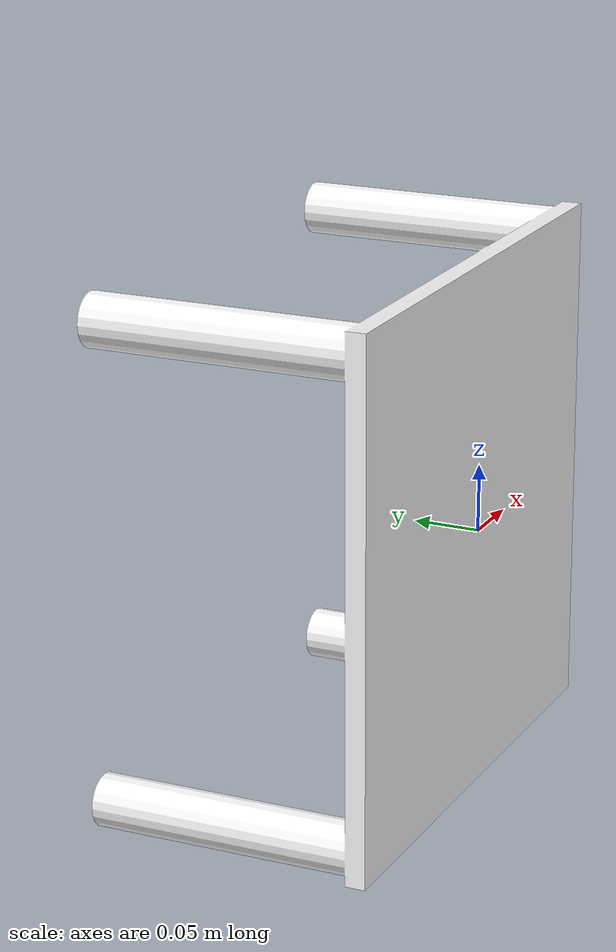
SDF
<?xml version="1.0" ?>
<sdf version="1.5">
  <model name="orange">
    <link name="link">
      <pose>0 0.0 0.0 0 0 0</pose>
      <inertial>
        <mass>0.0565</mass>
        <inertia>
          <ixx>2.3541666666666672e-05</ixx>
          <ixy>0</ixy>
          <ixz>0</ixz>
          <iyy>2.3541666666666672e-05</iyy>
          <iyz>0</iyz>
          <izz>2.3541666666666672e-05</izz>
        </inertia>
      </inertial>
      <collision name="collision">
      <pose>0 0.105 0.0 0 0 0</pose>
        <geometry>

          <box>
           <size>0.4 0.215 0.4</size>
          </box>
        </geometry>
        <surface>
          <contact>
            <!-- Red Pine coefficients for longitudinal axis of the wood
                 according to:
                 http://www.fpl.fs.fed.us/documnts/fplgtr/fplgtr113/ch04.pdf -->
            <poissons_ratio>0.347</poissons_ratio>
            <elastic_modulus>8.8e+09</elastic_modulus>
            <ode>
              <kp>100000</kp>
              <kd>1</kd>
              <max_vel>1.0</max_vel>
              <min_depth>0.001</min_depth>
            </ode>
          </contact>
          <friction>
            <torsional>
              <coefficient>1.0</coefficient>
              <use_patch_radius>0</use_patch_radius>
              <surface_radius>0.05</surface_radius>
            </torsional>
          </friction>
        </surface>
      </collision>
      <visual name="visual">
        <geometry>
          <mesh>
            <uri>model://zhuozi/meshes/1.dae</uri>  <!--.dae文件地址-->
          </mesh>
        </geometry>
      </visual>
    </link>
      <static>1</static>
  </model>

</sdf>
